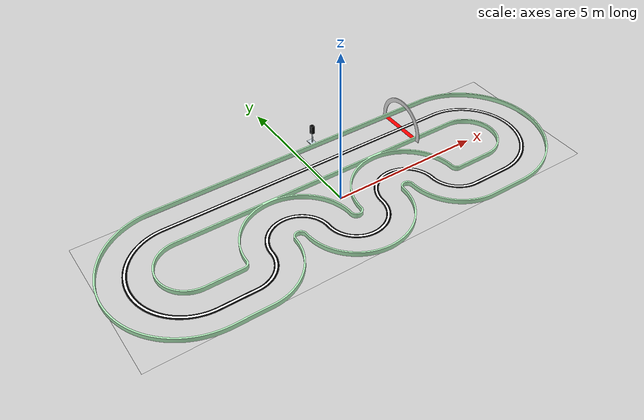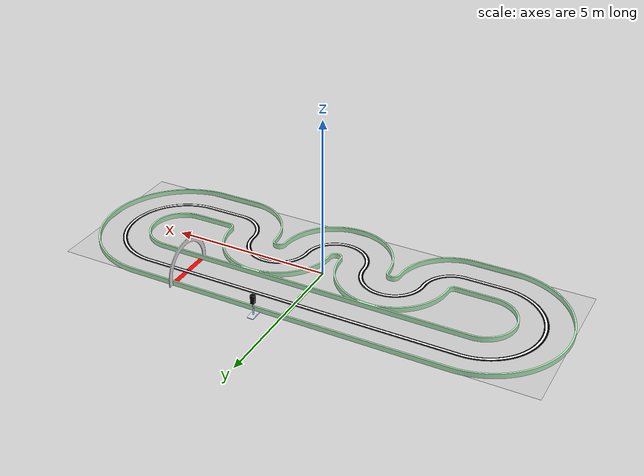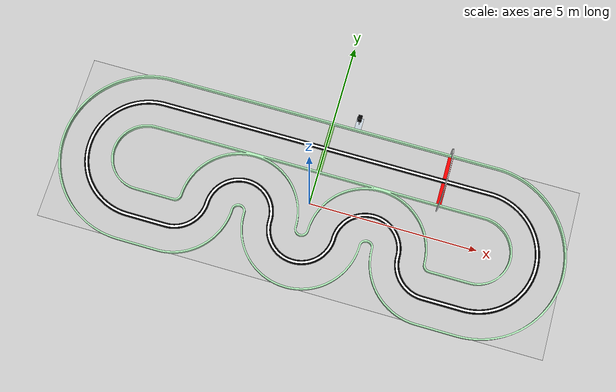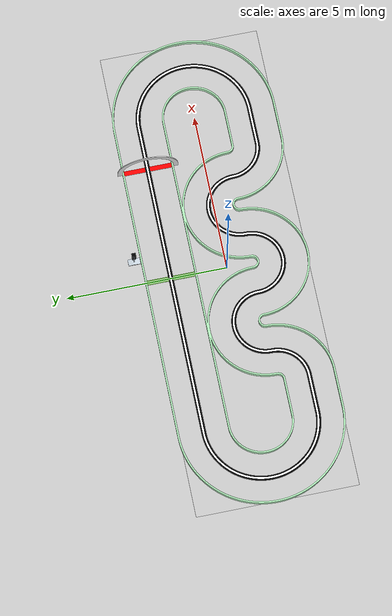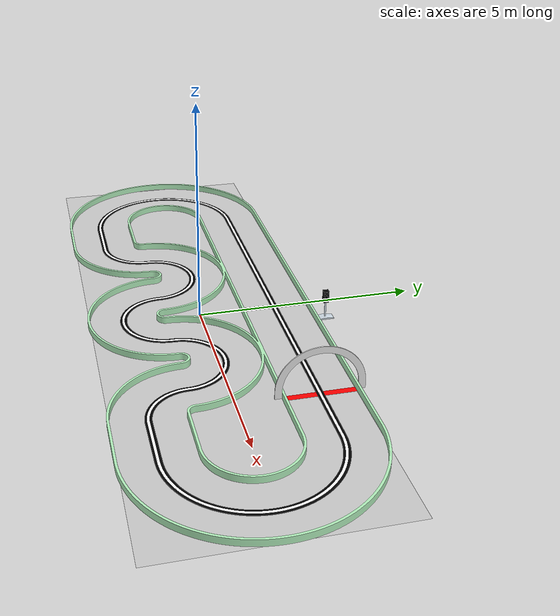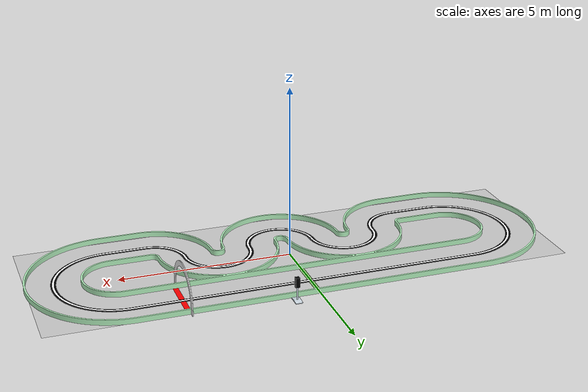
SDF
<?xml version="1.0" ?>
<sdf version="1.6">
  <world name="default">
    <scene>
    </scene>
    <!-- A global light source -->
    <include>
      <uri>model://sun</uri>
    </include>
    <!-- A textured ground plane -->
    <include>
      <uri>model://track_trr</uri>
    </include>
  </world>
</sdf>

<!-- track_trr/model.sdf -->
<sdf version="1.6">
  <model name="ethz_cam1">
    <pose>0 0 0 0 0 0</pose>
    <static>true</static>
    <link name="ground_plane_link">
      <collision name="collision">
	<geometry>
          <plane>
            <normal>0 0 1</normal>
            <size>60.0 10.0</size>
          </plane>
	</geometry>
	<surface>
          <friction>
            <ode>
              <mu>100</mu>
              <mu2>50</mu2>
            </ode>
          </friction>
	</surface>
      </collision>
      <visual name="visual">
      	<cast_shadows>false</cast_shadows>
      	<geometry>
          <plane>
            <normal>0 0 1</normal>
            <size>15.0 5.0</size>
          </plane>
      	</geometry>
      	<material>
          <script>
            <uri>model://track_trr/materials/scripts</uri>
            <uri>model://track_trr/materials/textures</uri>
      	    <name>track_trr_floor/Image</name>
          </script>
      	</material>
      </visual>
    </link>

    <link name="lane">
      <visual name="visual">
    	<geometry>
          <mesh><uri>model://track_trr/meshes/track_small_2_lane.dae</uri></mesh>
    	</geometry>
      </visual>
    </link>

   <link name="walls">
      <visual name="visual">
    	<geometry>
          <mesh><uri>model://track_trr/meshes/track_small_2_walls_text.dae</uri></mesh>
    	</geometry>
      </visual>
    </link>

   <link name="arch">
      <visual name="visual">
    	<geometry>
          <mesh><uri>model://track_trr/meshes/track_small_2_arch.dae</uri></mesh>
    	</geometry>
      </visual>
    </link>

   <link name="traffic_light">
     <pose>0.75 2.75 0 0 0 -1.57</pose>
      <visual name="visual">
	<geometry>
          <mesh><uri>model://track_trr/meshes/traffic_light.dae</uri></mesh>
    	</geometry>
      </visual>
    </link>

  </model>
</sdf>
